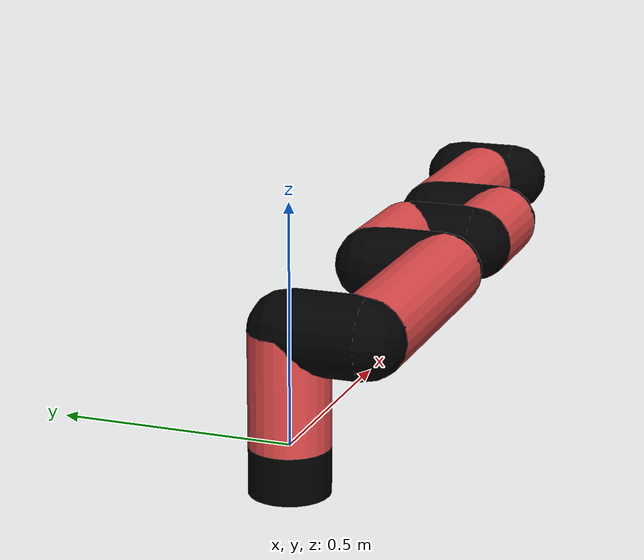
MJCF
<mujoco model="manipulator">
		<compiler angle="degree" coordinate="local" inertiafromgeom="auto" meshdir="meshes/"/>
		<option gravity="0 0 0" integrator="RK4" iterations="30" timestep="0.01"/>

		<default>
		<joint armature="1" limited="true" stiffness="10" damping="15" frictionloss="5.0"/>
		<geom conaffinity="1" condim="3" contype="1" friction=".5 .1 .1" margin="0.002"/>
		<motor ctrllimited="true"/>
		<position ctrllimited="true"/>
		</default>

		<asset>
		<texture builtin="gradient" height="100" rgb1="1.0 1.0 1.0" rgb2="1.0 1.0 1.0" type="skybox" width="100"/>
		<texture builtin="flat" height="32" name="arm_tex" rgb1="0.9 0.3 0.3" type="2d" width="32"/>
		<texture builtin="flat" height="32" name="gripper_tex" rgb1="0.0 0.0 0.0" type="cube" width="32"/>

		<material name="arm_mat" shininess="0.1" specular="0.1" texture="arm_tex"/>
		<material name="gripper_mat" shininess="1" specular="1" texture="gripper_tex"/>
		</asset>

		<worldbody>
		<light cutoff="45" diffuse=".8 .8 .8" dir="0 0.16 -1" directional="false" name="light" pos="0 -2.0 8.0" specular="0.3 0.3 0.3"/>

		<body name="base_link" pos="0 0 -0.1">
		<geom fromto="0 0 0 0 0 0.1" material="arm_mat" name="base_link" rgba="0.0 0.0 0.0 1" size="0.085" type="cylinder"/>
		</body>

		<body name="l1" pos="0 0 0">
<geom fromto="0 0 0 0 0 0.24" material="arm_mat" name="l1" rgba="0.9 0.3 0.3 1" size="0.085" type="cylinder"/>
<geom fromto="0 0 0.24 0 -0.16 0.24" material="arm_mat" name="l1_ex" rgba="0.0 0.0 0.0 1" size="0.085" type="capsule"/>
<joint axis="0 0 1" name="j1" pos="0 0 0" range="-90 90" damping="18.49" frictionloss="7.95"/>

<body name="l2" pos="0 -0.16 0.24">
<geom fromto="0 0 0 0.52 0 0" material="arm_mat" name="l2" rgba="0.9 0.3 0.3 1" size="0.085" type="cylinder"/>
<geom fromto="0.52 0 0 0.52 0.16 0" material="arm_mat" name="l2_ex" rgba="0.0 0.0 0.0 1" size="0.085" type="capsule"/>
<joint axis="0.0 1.0 0.0" name="j2" pos="0 0 0" range="-90 60" damping="19.7" frictionloss="6.6"/>

<body name="l3" pos="0.52 0.16 0">
<geom fromto="0 0 0 0.25 0 0" material="arm_mat" name="l3" rgba="0.9 0.3 0.3 1" size="0.085" type="cylinder"/>
<geom fromto="0.25 0 0 0.25 -0.16 0" material="arm_mat" name="l3_ex" rgba="0.0 0.0 0.0 1" size="0.085" type="capsule"/>
<joint axis="0.0 1.0 0.0" name="j3" pos="0 0 0" range="-30 60" damping="37.01" frictionloss="9.95"/>

<body name="l4" pos="0.25 -0.16 0">
<geom fromto="0 0 0 0.22 0 0" material="arm_mat" name="l4" rgba="0.9 0.3 0.3 1" size="0.085" type="cylinder"/>
<geom fromto="0.22 0 0 0.22 0.16 0" material="arm_mat" name="l4_ex" rgba="0.0 0.0 0.0 1" size="0.085" type="capsule"/>
<joint axis="0.0 1.0 0.0" name="j4" pos="0 0 0" range="-30 60" damping="30.03" frictionloss="12.36"/>

<body name="l5" pos="0.22 0.16 0">
<geom fromto="0 0 0 0.41 0 0" material="arm_mat" name="l5" rgba="0.9 0.3 0.3 1" size="0.085" type="cylinder"/>
<joint axis="0.0 1.0 0.0" name="j5" pos="0 0 0" range="-30 60" damping="22.16" frictionloss="12.21"/>

<body name="gripper" pos="0.41 0 0">
<geom fromto="0.05 -0.07 0 0.05 0.07 0" material="gripper_mat" name="gripper" rgba="0.0 0.0 0.0 1" size="0.085" type="capsule"/><joint axis="1 0 0" name="j6" pos="0 0 0" range="-90 90" damping="15" frictionloss="5.0"/><body name="finger" pos="0.1 0 0">
<geom fromto="0 0.0 0 0.1 0.0 0" material="gripper_mat" name="finger" rgba="0.0 0.0 0.0 1" size="0.020 0.06 0.06" type="box"/>
</body>
<site name="current" pos="0.2 0. 0.0" rgba="0. 0. 1.0 1" size="0.02" type="sphere"/>
</body>
</body>
</body>
</body>
</body>
</body>
</worldbody>
<actuator>
<motor ctrllimited="true" ctrlrange="-1.0 1.0" joint="j1" gear="52.63"/>
<motor ctrllimited="true" ctrlrange="-1.0 1.0" joint="j2" gear="88.66"/>
<motor ctrllimited="true" ctrlrange="-1.0 1.0" joint="j3" gear="103.21"/>
<motor ctrllimited="true" ctrlrange="-1.0 1.0" joint="j4" gear="52.93"/>
<motor ctrllimited="true" ctrlrange="-1.0 1.0" joint="j5" gear="111.03"/>
<motor ctrllimited="true" ctrlrange="-1.0 1.0" joint="j6" gear="80"/>
</actuator>
</mujoco>
